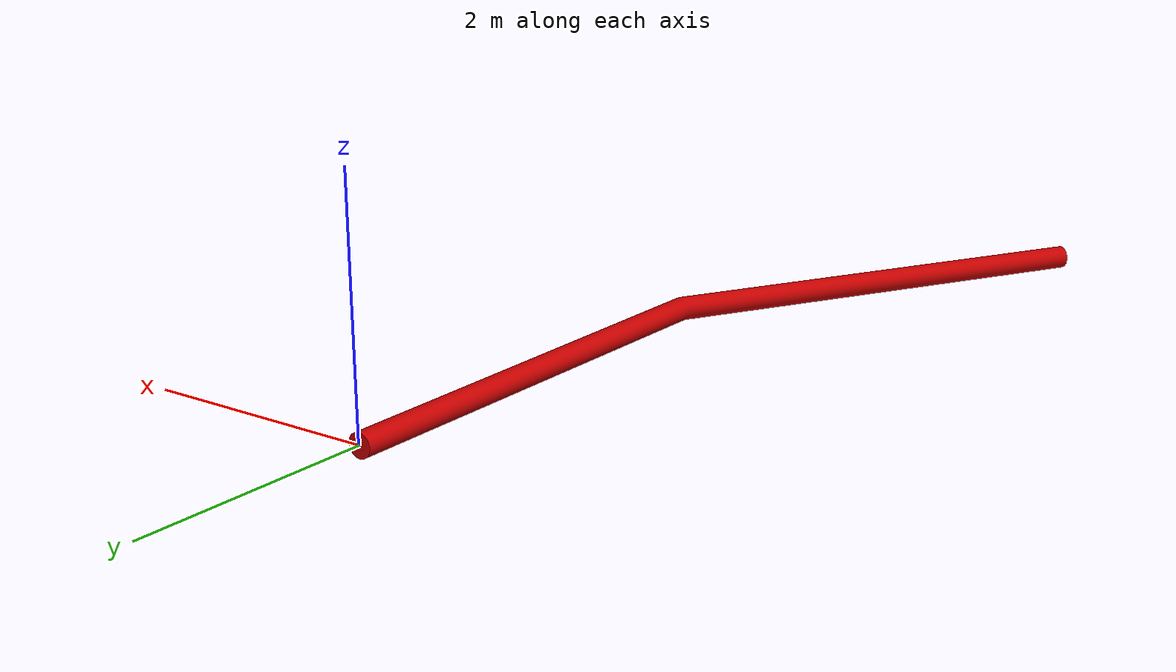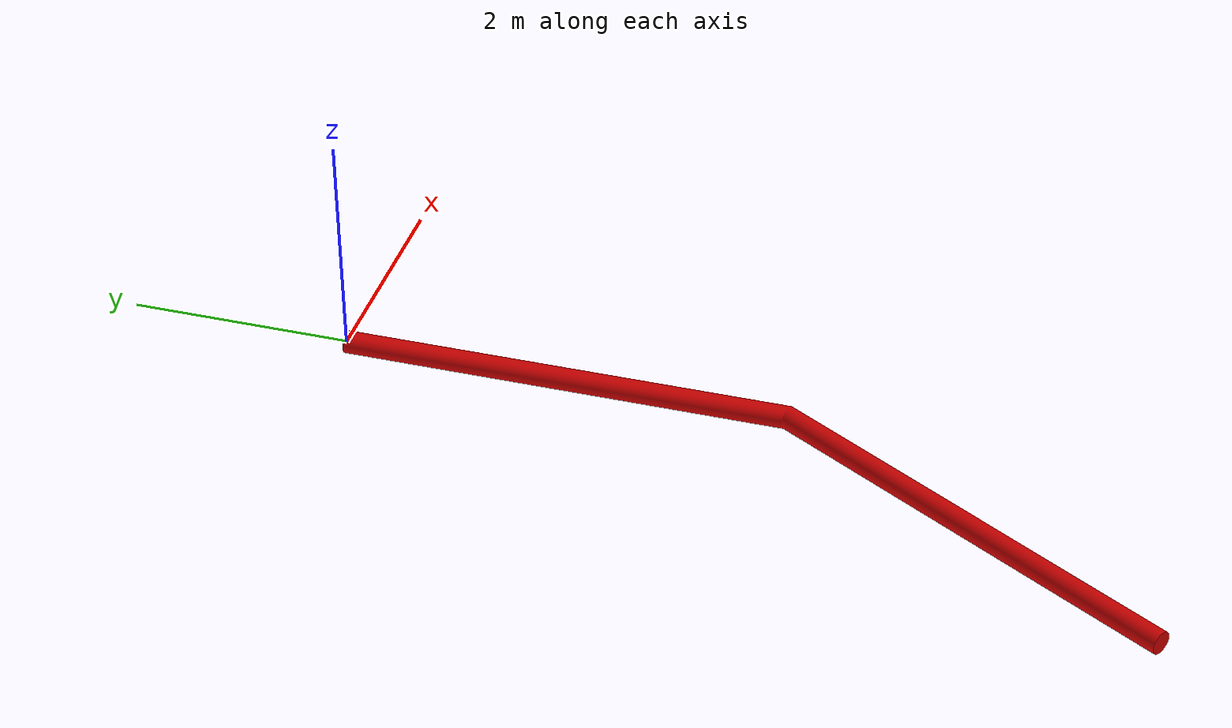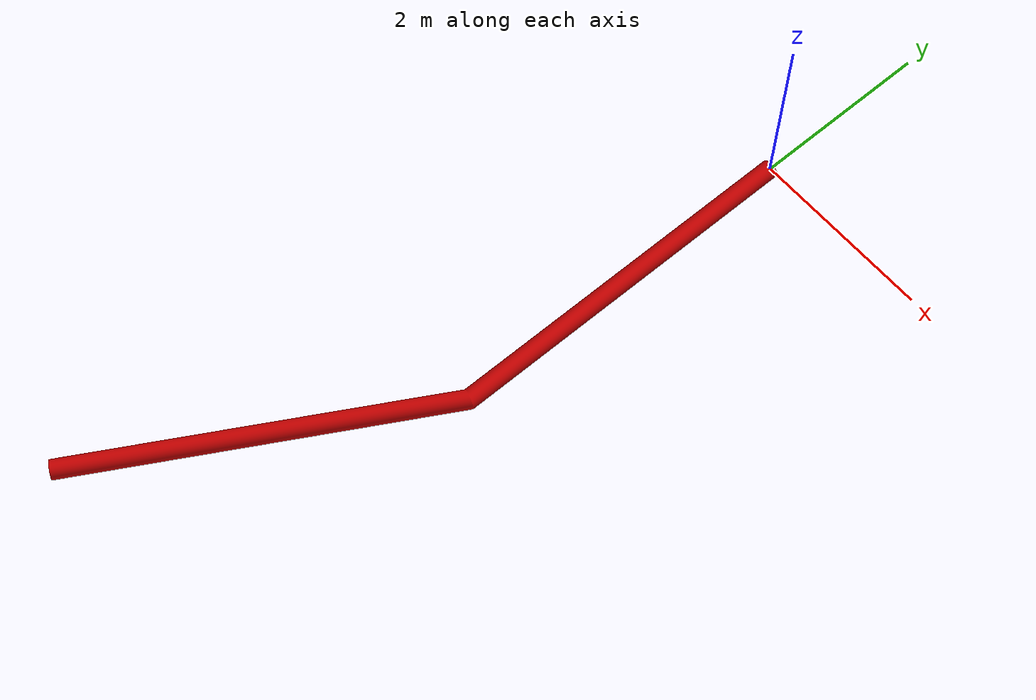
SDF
<?xml version="1.0" ?>
<sdf version="1.5">
  <model name="main_tube">
    <static>true</static>
    <link name="link">
      <collision name="collision">
        <geometry>
          <mesh>
            <uri>model://main_tube/meshes/main_tube.dae</uri>
            <scale>1 1 1</scale>
          </mesh>
        </geometry>
      </collision>
      <visual name="visual">
        <geometry>
          <mesh>
            <uri>model://main_tube/meshes/main_tube.dae</uri>
            <scale>1 1 1</scale>
          </mesh>
        </geometry>
      </visual>
    </link>
  </model>
</sdf>
